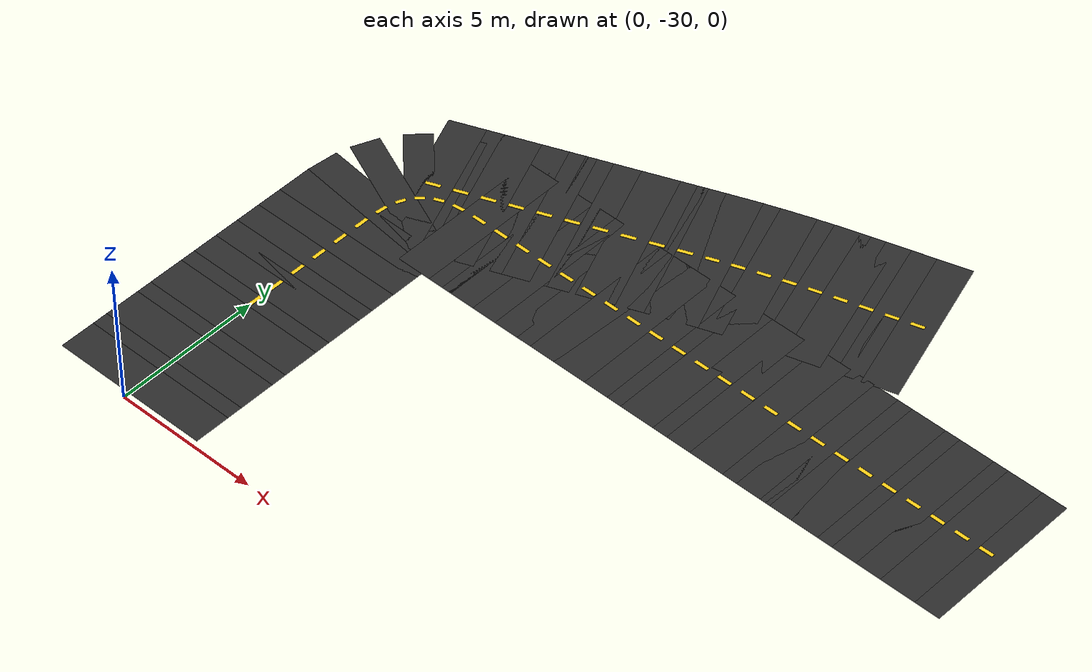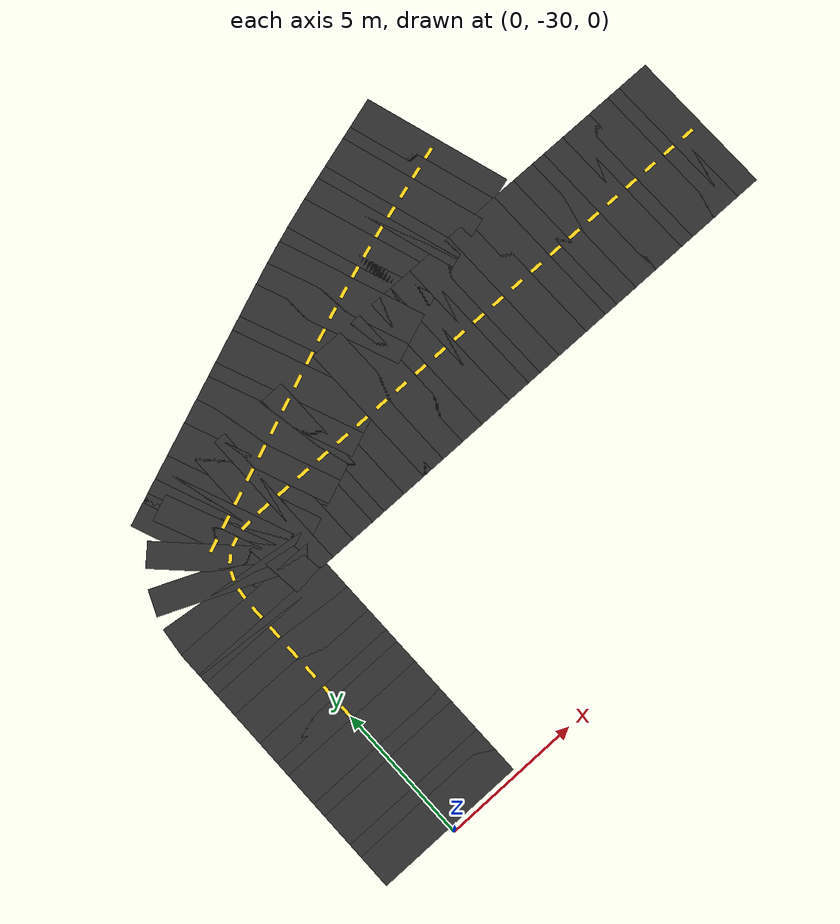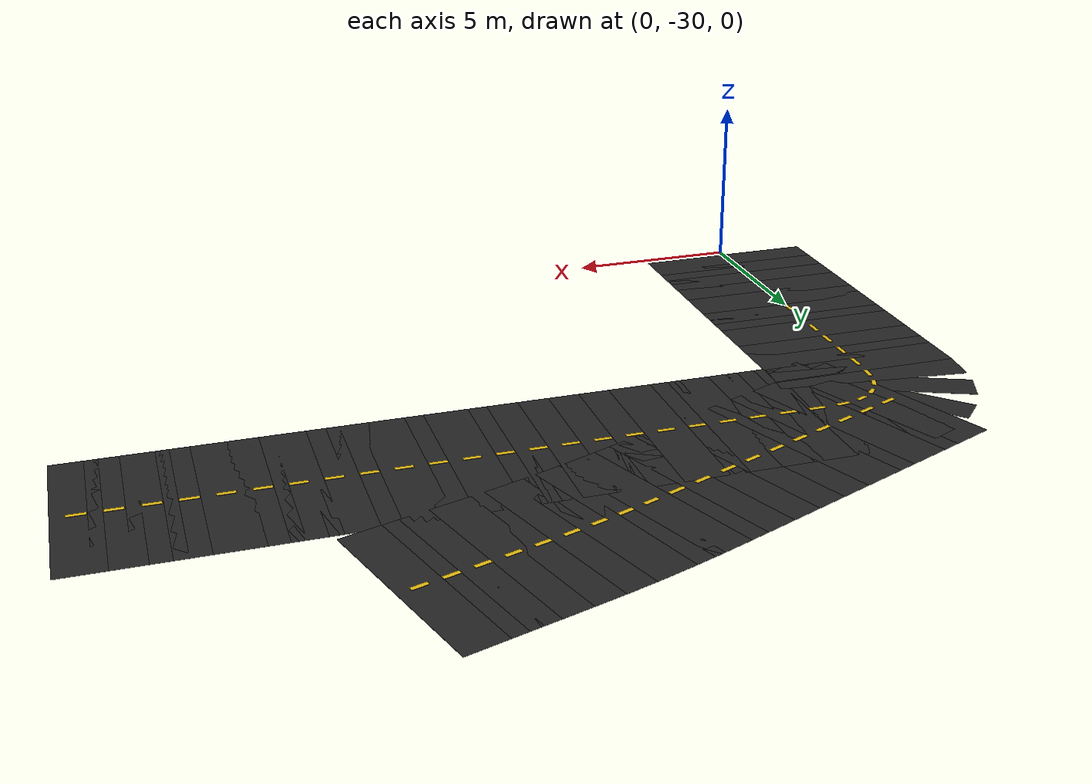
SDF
<sdf version="1.7">
 <world name="campus_delivery">
  <model name="campus_roads">
   <static>true</static>
   <link name="south_service_loop_0013">
    <pose>0.000 -29.188 0.002 0 0 1.570796</pose>
    <visual name="visual">
     <geometry><box><size>1.225 5.500 0.004</size></box></geometry>
     <material><ambient>0.160 0.160 0.160 1.000</ambient><diffuse>0.160 0.160 0.160 1.000</diffuse></material>
    </visual>
    <visual name="center_line">
     <pose>0 0 0.008 0 0 0</pose>
     <geometry><box><size>0.481 0.120 0.012</size></box></geometry>
     <material><ambient>0.950 0.780 0.080 1.000</ambient><diffuse>0.950 0.780 0.080 1.000</diffuse></material>
    </visual>
   </link>
   <link name="south_service_loop_0014">
    <pose>0.000 -28.312 0.002 0 0 1.570796</pose>
    <visual name="visual">
     <geometry><box><size>1.225 5.500 0.004</size></box></geometry>
     <material><ambient>0.160 0.160 0.160 1.000</ambient><diffuse>0.160 0.160 0.160 1.000</diffuse></material>
    </visual>
    <visual name="center_line">
     <pose>0 0 0.008 0 0 0</pose>
     <geometry><box><size>0.481 0.120 0.012</size></box></geometry>
     <material><ambient>0.950 0.780 0.080 1.000</ambient><diffuse>0.950 0.780 0.080 1.000</diffuse></material>
    </visual>
   </link>
   <link name="south_service_loop_0015">
    <pose>0.000 -27.438 0.002 0 0 1.570796</pose>
    <visual name="visual">
     <geometry><box><size>1.225 5.500 0.004</size></box></geometry>
     <material><ambient>0.160 0.160 0.160 1.000</ambient><diffuse>0.160 0.160 0.160 1.000</diffuse></material>
    </visual>
    <visual name="center_line">
     <pose>0 0 0.008 0 0 0</pose>
     <geometry><box><size>0.481 0.120 0.012</size></box></geometry>
     <material><ambient>0.950 0.780 0.080 1.000</ambient><diffuse>0.950 0.780 0.080 1.000</diffuse></material>
    </visual>
   </link>
   <link name="south_service_loop_0016">
    <pose>0.000 -26.562 0.002 0 0 1.570796</pose>
    <visual name="visual">
     <geometry><box><size>1.225 5.500 0.004</size></box></geometry>
     <material><ambient>0.160 0.160 0.160 1.000</ambient><diffuse>0.160 0.160 0.160 1.000</diffuse></material>
    </visual>
    <visual name="center_line">
     <pose>0 0 0.008 0 0 0</pose>
     <geometry><box><size>0.481 0.120 0.012</size></box></geometry>
     <material><ambient>0.950 0.780 0.080 1.000</ambient><diffuse>0.950 0.780 0.080 1.000</diffuse></material>
    </visual>
   </link>
   <link name="south_service_loop_0017">
    <pose>0.000 -25.688 0.002 0 0 1.570796</pose>
    <visual name="visual">
     <geometry><box><size>1.225 5.500 0.004</size></box></geometry>
     <material><ambient>0.160 0.160 0.160 1.000</ambient><diffuse>0.160 0.160 0.160 1.000</diffuse></material>
    </visual>
    <visual name="center_line">
     <pose>0 0 0.008 0 0 0</pose>
     <geometry><box><size>0.481 0.120 0.012</size></box></geometry>
     <material><ambient>0.950 0.780 0.080 1.000</ambient><diffuse>0.950 0.780 0.080 1.000</diffuse></material>
    </visual>
   </link>
   <link name="south_service_loop_0018">
    <pose>0.000 -24.812 0.002 0 0 1.570796</pose>
    <visual name="visual">
     <geometry><box><size>1.225 5.500 0.004</size></box></geometry>
     <material><ambient>0.160 0.160 0.160 1.000</ambient><diffuse>0.160 0.160 0.160 1.000</diffuse></material>
    </visual>
    <visual name="center_line">
     <pose>0 0 0.008 0 0 0</pose>
     <geometry><box><size>0.481 0.120 0.012</size></box></geometry>
     <material><ambient>0.950 0.780 0.080 1.000</ambient><diffuse>0.950 0.780 0.080 1.000</diffuse></material>
    </visual>
   </link>
   <link name="south_service_loop_0019">
    <pose>0.000 -23.938 0.002 0 0 1.570796</pose>
    <visual name="visual">
     <geometry><box><size>1.225 5.500 0.004</size></box></geometry>
     <material><ambient>0.160 0.160 0.160 1.000</ambient><diffuse>0.160 0.160 0.160 1.000</diffuse></material>
    </visual>
    <visual name="center_line">
     <pose>0 0 0.008 0 0 0</pose>
     <geometry><box><size>0.481 0.120 0.012</size></box></geometry>
     <material><ambient>0.950 0.780 0.080 1.000</ambient><diffuse>0.950 0.780 0.080 1.000</diffuse></material>
    </visual>
   </link>
   <link name="south_service_loop_0020">
    <pose>0.000 -23.062 0.002 0 0 1.570796</pose>
    <visual name="visual">
     <geometry><box><size>1.225 5.500 0.004</size></box></geometry>
     <material><ambient>0.160 0.160 0.160 1.000</ambient><diffuse>0.160 0.160 0.160 1.000</diffuse></material>
    </visual>
    <visual name="center_line">
     <pose>0 0 0.008 0 0 0</pose>
     <geometry><box><size>0.481 0.120 0.012</size></box></geometry>
     <material><ambient>0.950 0.780 0.080 1.000</ambient><diffuse>0.950 0.780 0.080 1.000</diffuse></material>
    </visual>
   </link>
   <link name="south_service_loop_0021">
    <pose>0.000 -22.188 0.002 0 0 1.570796</pose>
    <visual name="visual">
     <geometry><box><size>1.225 5.500 0.004</size></box></geometry>
     <material><ambient>0.160 0.160 0.160 1.000</ambient><diffuse>0.160 0.160 0.160 1.000</diffuse></material>
    </visual>
    <visual name="center_line">
     <pose>0 0 0.008 0 0 0</pose>
     <geometry><box><size>0.481 0.120 0.012</size></box></geometry>
     <material><ambient>0.950 0.780 0.080 1.000</ambient><diffuse>0.950 0.780 0.080 1.000</diffuse></material>
    </visual>
   </link>
   <link name="south_service_loop_0022">
    <pose>0.000 -21.312 0.002 0 0 1.570796</pose>
    <visual name="visual">
     <geometry><box><size>1.225 5.500 0.004</size></box></geometry>
     <material><ambient>0.160 0.160 0.160 1.000</ambient><diffuse>0.160 0.160 0.160 1.000</diffuse></material>
    </visual>
    <visual name="center_line">
     <pose>0 0 0.008 0 0 0</pose>
     <geometry><box><size>0.481 0.120 0.012</size></box></geometry>
     <material><ambient>0.950 0.780 0.080 1.000</ambient><diffuse>0.950 0.780 0.080 1.000</diffuse></material>
    </visual>
   </link>
   <link name="south_service_loop_0023">
    <pose>0.000 -20.438 0.002 0 0 1.570796</pose>
    <visual name="visual">
     <geometry><box><size>1.225 5.500 0.004</size></box></geometry>
     <material><ambient>0.160 0.160 0.160 1.000</ambient><diffuse>0.160 0.160 0.160 1.000</diffuse></material>
    </visual>
    <visual name="center_line">
     <pose>0 0 0.008 0 0 0</pose>
     <geometry><box><size>0.481 0.120 0.012</size></box></geometry>
     <material><ambient>0.950 0.780 0.080 1.000</ambient><diffuse>0.950 0.780 0.080 1.000</diffuse></material>
    </visual>
   </link>
   <link name="south_service_loop_0024">
    <pose>0.040 -19.640 0.002 0 0 1.460139</pose>
    <visual name="visual">
     <geometry><box><size>1.074 5.500 0.004</size></box></geometry>
     <material><ambient>0.160 0.160 0.160 1.000</ambient><diffuse>0.160 0.160 0.160 1.000</diffuse></material>
    </visual>
    <visual name="center_line">
     <pose>0 0 0.008 0 0 0</pose>
     <geometry><box><size>0.398 0.120 0.012</size></box></geometry>
     <material><ambient>0.950 0.780 0.080 1.000</ambient><diffuse>0.950 0.780 0.080 1.000</diffuse></material>
    </visual>
   </link>
   <link name="south_service_loop_0025">
    <pose>0.200 -19.000 0.002 0 0 1.165905</pose>
    <visual name="visual">
     <geometry><box><size>0.959 5.500 0.004</size></box></geometry>
     <material><ambient>0.160 0.160 0.160 1.000</ambient><diffuse>0.160 0.160 0.160 1.000</diffuse></material>
    </visual>
    <visual name="center_line">
     <pose>0 0 0.008 0 0 0</pose>
     <geometry><box><size>0.335 0.120 0.012</size></box></geometry>
     <material><ambient>0.950 0.780 0.080 1.000</ambient><diffuse>0.950 0.780 0.080 1.000</diffuse></material>
    </visual>
   </link>
   <link name="south_service_loop_0026">
    <pose>0.520 -18.520 0.002 0 0 0.785398</pose>
    <visual name="visual">
     <geometry><box><size>0.916 5.500 0.004</size></box></geometry>
     <material><ambient>0.160 0.160 0.160 1.000</ambient><diffuse>0.160 0.160 0.160 1.000</diffuse></material>
    </visual>
    <visual name="center_line">
     <pose>0 0 0.008 0 0 0</pose>
     <geometry><box><size>0.311 0.120 0.012</size></box></geometry>
     <material><ambient>0.950 0.780 0.080 1.000</ambient><diffuse>0.950 0.780 0.080 1.000</diffuse></material>
    </visual>
   </link>
   <link name="south_service_loop_0027">
    <pose>1.000 -18.200 0.002 0 0 0.404892</pose>
    <visual name="visual">
     <geometry><box><size>0.959 5.500 0.004</size></box></geometry>
     <material><ambient>0.160 0.160 0.160 1.000</ambient><diffuse>0.160 0.160 0.160 1.000</diffuse></material>
    </visual>
    <visual name="center_line">
     <pose>0 0 0.008 0 0 0</pose>
     <geometry><box><size>0.335 0.120 0.012</size></box></geometry>
     <material><ambient>0.950 0.780 0.080 1.000</ambient><diffuse>0.950 0.780 0.080 1.000</diffuse></material>
    </visual>
   </link>
   <link name="south_service_loop_0028">
    <pose>1.640 -18.040 0.002 0 0 0.110657</pose>
    <visual name="visual">
     <geometry><box><size>1.074 5.500 0.004</size></box></geometry>
     <material><ambient>0.160 0.160 0.160 1.000</ambient><diffuse>0.160 0.160 0.160 1.000</diffuse></material>
    </visual>
    <visual name="center_line">
     <pose>0 0 0.008 0 0 0</pose>
     <geometry><box><size>0.398 0.120 0.012</size></box></geometry>
     <material><ambient>0.950 0.780 0.080 1.000</ambient><diffuse>0.950 0.780 0.080 1.000</diffuse></material>
    </visual>
   </link>
   <link name="south_service_loop_0029">
    <pose>2.435 -18.000 0.002 0 0 0.000000</pose>
    <visual name="visual">
     <geometry><box><size>1.220 5.500 0.004</size></box></geometry>
     <material><ambient>0.160 0.160 0.160 1.000</ambient><diffuse>0.160 0.160 0.160 1.000</diffuse></material>
    </visual>
    <visual name="center_line">
     <pose>0 0 0.008 0 0 0</pose>
     <geometry><box><size>0.478 0.120 0.012</size></box></geometry>
     <material><ambient>0.950 0.780 0.080 1.000</ambient><diffuse>0.950 0.780 0.080 1.000</diffuse></material>
    </visual>
   </link>
   <link name="south_service_loop_0030">
    <pose>3.304 -18.000 0.002 0 0 0.000000</pose>
    <visual name="visual">
     <geometry><box><size>1.220 5.500 0.004</size></box></geometry>
     <material><ambient>0.160 0.160 0.160 1.000</ambient><diffuse>0.160 0.160 0.160 1.000</diffuse></material>
    </visual>
    <visual name="center_line">
     <pose>0 0 0.008 0 0 0</pose>
     <geometry><box><size>0.478 0.120 0.012</size></box></geometry>
     <material><ambient>0.950 0.780 0.080 1.000</ambient><diffuse>0.950 0.780 0.080 1.000</diffuse></material>
    </visual>
   </link>
   <link name="south_service_loop_0031">
    <pose>4.174 -18.000 0.002 0 0 0.000000</pose>
    <visual name="visual">
     <geometry><box><size>1.220 5.500 0.004</size></box></geometry>
     <material><ambient>0.160 0.160 0.160 1.000</ambient><diffuse>0.160 0.160 0.160 1.000</diffuse></material>
    </visual>
    <visual name="center_line">
     <pose>0 0 0.008 0 0 0</pose>
     <geometry><box><size>0.478 0.120 0.012</size></box></geometry>
     <material><ambient>0.950 0.780 0.080 1.000</ambient><diffuse>0.950 0.780 0.080 1.000</diffuse></material>
    </visual>
   </link>
   <link name="south_service_loop_0032">
    <pose>5.043 -18.000 0.002 0 0 0.000000</pose>
    <visual name="visual">
     <geometry><box><size>1.220 5.500 0.004</size></box></geometry>
     <material><ambient>0.160 0.160 0.160 1.000</ambient><diffuse>0.160 0.160 0.160 1.000</diffuse></material>
    </visual>
    <visual name="center_line">
     <pose>0 0 0.008 0 0 0</pose>
     <geometry><box><size>0.478 0.120 0.012</size></box></geometry>
     <material><ambient>0.950 0.780 0.080 1.000</ambient><diffuse>0.950 0.780 0.080 1.000</diffuse></material>
    </visual>
   </link>
   <link name="south_service_loop_0033">
    <pose>5.913 -18.000 0.002 0 0 0.000000</pose>
    <visual name="visual">
     <geometry><box><size>1.220 5.500 0.004</size></box></geometry>
     <material><ambient>0.160 0.160 0.160 1.000</ambient><diffuse>0.160 0.160 0.160 1.000</diffuse></material>
    </visual>
    <visual name="center_line">
     <pose>0 0 0.008 0 0 0</pose>
     <geometry><box><size>0.478 0.120 0.012</size></box></geometry>
     <material><ambient>0.950 0.780 0.080 1.000</ambient><diffuse>0.950 0.780 0.080 1.000</diffuse></material>
    </visual>
   </link>
   <link name="south_service_loop_0034">
    <pose>6.783 -18.000 0.002 0 0 0.000000</pose>
    <visual name="visual">
     <geometry><box><size>1.220 5.500 0.004</size></box></geometry>
     <material><ambient>0.160 0.160 0.160 1.000</ambient><diffuse>0.160 0.160 0.160 1.000</diffuse></material>
    </visual>
    <visual name="center_line">
     <pose>0 0 0.008 0 0 0</pose>
     <geometry><box><size>0.478 0.120 0.012</size></box></geometry>
     <material><ambient>0.950 0.780 0.080 1.000</ambient><diffuse>0.950 0.780 0.080 1.000</diffuse></material>
    </visual>
   </link>
   <link name="south_service_loop_0035">
    <pose>7.652 -18.000 0.002 0 0 0.000000</pose>
    <visual name="visual">
     <geometry><box><size>1.220 5.500 0.004</size></box></geometry>
     <material><ambient>0.160 0.160 0.160 1.000</ambient><diffuse>0.160 0.160 0.160 1.000</diffuse></material>
    </visual>
    <visual name="center_line">
     <pose>0 0 0.008 0 0 0</pose>
     <geometry><box><size>0.478 0.120 0.012</size></box></geometry>
     <material><ambient>0.950 0.780 0.080 1.000</ambient><diffuse>0.950 0.780 0.080 1.000</diffuse></material>
    </visual>
   </link>
   <link name="south_service_loop_0036">
    <pose>8.522 -18.000 0.002 0 0 0.000000</pose>
    <visual name="visual">
     <geometry><box><size>1.220 5.500 0.004</size></box></geometry>
     <material><ambient>0.160 0.160 0.160 1.000</ambient><diffuse>0.160 0.160 0.160 1.000</diffuse></material>
    </visual>
    <visual name="center_line">
     <pose>0 0 0.008 0 0 0</pose>
     <geometry><box><size>0.478 0.120 0.012</size></box></geometry>
     <material><ambient>0.950 0.780 0.080 1.000</ambient><diffuse>0.950 0.780 0.080 1.000</diffuse></material>
    </visual>
   </link>
   <link name="south_service_loop_0037">
    <pose>9.391 -18.000 0.002 0 0 0.000000</pose>
    <visual name="visual">
     <geometry><box><size>1.220 5.500 0.004</size></box></geometry>
     <material><ambient>0.160 0.160 0.160 1.000</ambient><diffuse>0.160 0.160 0.160 1.000</diffuse></material>
    </visual>
    <visual name="center_line">
     <pose>0 0 0.008 0 0 0</pose>
     <geometry><box><size>0.478 0.120 0.012</size></box></geometry>
     <material><ambient>0.950 0.780 0.080 1.000</ambient><diffuse>0.950 0.780 0.080 1.000</diffuse></material>
    </visual>
   </link>
   <link name="south_service_loop_0038">
    <pose>10.261 -18.000 0.002 0 0 0.000000</pose>
    <visual name="visual">
     <geometry><box><size>1.220 5.500 0.004</size></box></geometry>
     <material><ambient>0.160 0.160 0.160 1.000</ambient><diffuse>0.160 0.160 0.160 1.000</diffuse></material>
    </visual>
    <visual name="center_line">
     <pose>0 0 0.008 0 0 0</pose>
     <geometry><box><size>0.478 0.120 0.012</size></box></geometry>
     <material><ambient>0.950 0.780 0.080 1.000</ambient><diffuse>0.950 0.780 0.080 1.000</diffuse></material>
    </visual>
   </link>
   <link name="south_service_loop_0039">
    <pose>11.130 -18.000 0.002 0 0 0.000000</pose>
    <visual name="visual">
     <geometry><box><size>1.220 5.500 0.004</size></box></geometry>
     <material><ambient>0.160 0.160 0.160 1.000</ambient><diffuse>0.160 0.160 0.160 1.000</diffuse></material>
    </visual>
    <visual name="center_line">
     <pose>0 0 0.008 0 0 0</pose>
     <geometry><box><size>0.478 0.120 0.012</size></box></geometry>
     <material><ambient>0.950 0.780 0.080 1.000</ambient><diffuse>0.950 0.780 0.080 1.000</diffuse></material>
    </visual>
   </link>
   <link name="south_service_loop_0040">
    <pose>12.000 -18.000 0.002 0 0 0.000000</pose>
    <visual name="visual">
     <geometry><box><size>1.220 5.500 0.004</size></box></geometry>
     <material><ambient>0.160 0.160 0.160 1.000</ambient><diffuse>0.160 0.160 0.160 1.000</diffuse></material>
    </visual>
    <visual name="center_line">
     <pose>0 0 0.008 0 0 0</pose>
     <geometry><box><size>0.478 0.120 0.012</size></box></geometry>
     <material><ambient>0.950 0.780 0.080 1.000</ambient><diffuse>0.950 0.780 0.080 1.000</diffuse></material>
    </visual>
   </link>
   <link name="south_service_loop_0041">
    <pose>12.870 -18.000 0.002 0 0 0.000000</pose>
    <visual name="visual">
     <geometry><box><size>1.220 5.500 0.004</size></box></geometry>
     <material><ambient>0.160 0.160 0.160 1.000</ambient><diffuse>0.160 0.160 0.160 1.000</diffuse></material>
    </visual>
    <visual name="center_line">
     <pose>0 0 0.008 0 0 0</pose>
     <geometry><box><size>0.478 0.120 0.012</size></box></geometry>
     <material><ambient>0.950 0.780 0.080 1.000</ambient><diffuse>0.950 0.780 0.080 1.000</diffuse></material>
    </visual>
   </link>
   <link name="south_service_loop_0042">
    <pose>13.739 -18.000 0.002 0 0 0.000000</pose>
    <visual name="visual">
     <geometry><box><size>1.220 5.500 0.004</size></box></geometry>
     <material><ambient>0.160 0.160 0.160 1.000</ambient><diffuse>0.160 0.160 0.160 1.000</diffuse></material>
    </visual>
    <visual name="center_line">
     <pose>0 0 0.008 0 0 0</pose>
     <geometry><box><size>0.478 0.120 0.012</size></box></geometry>
     <material><ambient>0.950 0.780 0.080 1.000</ambient><diffuse>0.950 0.780 0.080 1.000</diffuse></material>
    </visual>
   </link>
   <link name="south_service_loop_0043">
    <pose>14.609 -18.000 0.002 0 0 0.000000</pose>
    <visual name="visual">
     <geometry><box><size>1.220 5.500 0.004</size></box></geometry>
     <material><ambient>0.160 0.160 0.160 1.000</ambient><diffuse>0.160 0.160 0.160 1.000</diffuse></material>
    </visual>
    <visual name="center_line">
     <pose>0 0 0.008 0 0 0</pose>
     <geometry><box><size>0.478 0.120 0.012</size></box></geometry>
     <material><ambient>0.950 0.780 0.080 1.000</ambient><diffuse>0.950 0.780 0.080 1.000</diffuse></material>
    </visual>
   </link>
   <link name="south_service_loop_0044">
    <pose>15.478 -18.000 0.002 0 0 0.000000</pose>
    <visual name="visual">
     <geometry><box><size>1.220 5.500 0.004</size></box></geometry>
     <material><ambient>0.160 0.160 0.160 1.000</ambient><diffuse>0.160 0.160 0.160 1.000</diffuse></material>
    </visual>
    <visual name="center_line">
     <pose>0 0 0.008 0 0 0</pose>
     <geometry><box><size>0.478 0.120 0.012</size></box></geometry>
     <material><ambient>0.950 0.780 0.080 1.000</ambient><diffuse>0.950 0.780 0.080 1.000</diffuse></material>
    </visual>
   </link>
   <link name="south_service_loop_0045">
    <pose>16.348 -18.000 0.002 0 0 0.000000</pose>
    <visual name="visual">
     <geometry><box><size>1.220 5.500 0.004</size></box></geometry>
     <material><ambient>0.160 0.160 0.160 1.000</ambient><diffuse>0.160 0.160 0.160 1.000</diffuse></material>
    </visual>
    <visual name="center_line">
     <pose>0 0 0.008 0 0 0</pose>
     <geometry><box><size>0.478 0.120 0.012</size></box></geometry>
     <material><ambient>0.950 0.780 0.080 1.000</ambient><diffuse>0.950 0.780 0.080 1.000</diffuse></material>
    </visual>
   </link>
   <link name="south_service_loop_0046">
    <pose>17.217 -18.000 0.002 0 0 0.000000</pose>
    <visual name="visual">
     <geometry><box><size>1.220 5.500 0.004</size></box></geometry>
     <material><ambient>0.160 0.160 0.160 1.000</ambient><diffuse>0.160 0.160 0.160 1.000</diffuse></material>
    </visual>
    <visual name="center_line">
     <pose>0 0 0.008 0 0 0</pose>
     <geometry><box><size>0.478 0.120 0.012</size></box></geometry>
     <material><ambient>0.950 0.780 0.080 1.000</ambient><diffuse>0.950 0.780 0.080 1.000</diffuse></material>
    </visual>
   </link>
   <link name="south_service_loop_0047">
    <pose>18.087 -18.000 0.002 0 0 0.000000</pose>
    <visual name="visual">
     <geometry><box><size>1.220 5.500 0.004</size></box></geometry>
     <material><ambient>0.160 0.160 0.160 1.000</ambient><diffuse>0.160 0.160 0.160 1.000</diffuse></material>
    </visual>
    <visual name="center_line">
     <pose>0 0 0.008 0 0 0</pose>
     <geometry><box><size>0.478 0.120 0.012</size></box></geometry>
     <material><ambient>0.950 0.780 0.080 1.000</ambient><diffuse>0.950 0.780 0.080 1.000</diffuse></material>
    </visual>
   </link>
   <link name="south_service_loop_0048">
    <pose>18.957 -18.000 0.002 0 0 0.000000</pose>
    <visual name="visual">
     <geometry><box><size>1.220 5.500 0.004</size></box></geometry>
     <material><ambient>0.160 0.160 0.160 1.000</ambient><diffuse>0.160 0.160 0.160 1.000</diffuse></material>
    </visual>
    <visual name="center_line">
     <pose>0 0 0.008 0 0 0</pose>
     <geometry><box><size>0.478 0.120 0.012</size></box></geometry>
     <material><ambient>0.950 0.780 0.080 1.000</ambient><diffuse>0.950 0.780 0.080 1.000</diffuse></material>
    </visual>
   </link>
   <link name="south_service_loop_0049">
    <pose>19.826 -18.000 0.002 0 0 0.000000</pose>
    <visual name="visual">
     <geometry><box><size>1.220 5.500 0.004</size></box></geometry>
     <material><ambient>0.160 0.160 0.160 1.000</ambient><diffuse>0.160 0.160 0.160 1.000</diffuse></material>
    </visual>
    <visual name="center_line">
     <pose>0 0 0.008 0 0 0</pose>
     <geometry><box><size>0.478 0.120 0.012</size></box></geometry>
     <material><ambient>0.950 0.780 0.080 1.000</ambient><diffuse>0.950 0.780 0.080 1.000</diffuse></material>
    </visual>
   </link>
   <link name="south_service_loop_0050">
    <pose>20.696 -18.000 0.002 0 0 0.000000</pose>
    <visual name="visual">
     <geometry><box><size>1.220 5.500 0.004</size></box></geometry>
     <material><ambient>0.160 0.160 0.160 1.000</ambient><diffuse>0.160 0.160 0.160 1.000</diffuse></material>
    </visual>
    <visual name="center_line">
     <pose>0 0 0.008 0 0 0</pose>
     <geometry><box><size>0.478 0.120 0.012</size></box></geometry>
     <material><ambient>0.950 0.780 0.080 1.000</ambient><diffuse>0.950 0.780 0.080 1.000</diffuse></material>
    </visual>
   </link>
   <link name="south_service_loop_0051">
    <pose>21.565 -18.000 0.002 0 0 0.000000</pose>
    <visual name="visual">
     <geometry><box><size>1.220 5.500 0.004</size></box></geometry>
     <material><ambient>0.160 0.160 0.160 1.000</ambient><diffuse>0.160 0.160 0.160 1.000</diffuse></material>
    </visual>
    <visual name="center_line">
     <pose>0 0 0.008 0 0 0</pose>
     <geometry><box><size>0.478 0.120 0.012</size></box></geometry>
     <material><ambient>0.950 0.780 0.080 1.000</ambient><diffuse>0.950 0.780 0.080 1.000</diffuse></material>
    </visual>
   </link>
   <link name="campus_main_trunk_0000">
    <pose>0.407 -17.837 0.002 0 0 0.380506</pose>
    <visual name="visual">
     <geometry><box><size>1.227 5.500 0.004</size></box></geometry>
     <material><ambient>0.160 0.160 0.160 1.000</ambient><diffuse>0.160 0.160 0.160 1.000</diffuse></material>
    </visual>
    <visual name="center_line">
     <pose>0 0 0.008 0 0 0</pose>
     <geometry><box><size>0.482 0.120 0.012</size></box></geometry>
     <material><ambient>0.950 0.780 0.080 1.000</ambient><diffuse>0.950 0.780 0.080 1.000</diffuse></material>
    </visual>
   </link>
   <link name="campus_main_trunk_0001">
    <pose>1.221 -17.511 0.002 0 0 0.380506</pose>
    <visual name="visual">
     <geometry><box><size>1.227 5.500 0.004</size></box></geometry>
     <material><ambient>0.160 0.160 0.160 1.000</ambient><diffuse>0.160 0.160 0.160 1.000</diffuse></material>
    </visual>
    <visual name="center_line">
     <pose>0 0 0.008 0 0 0</pose>
     <geometry><box><size>0.482 0.120 0.012</size></box></geometry>
     <material><ambient>0.950 0.780 0.080 1.000</ambient><diffuse>0.950 0.780 0.080 1.000</diffuse></material>
    </visual>
   </link>
   <link name="campus_main_trunk_0002">
    <pose>2.036 -17.186 0.002 0 0 0.380506</pose>
    <visual name="visual">
     <geometry><box><size>1.227 5.500 0.004</size></box></geometry>
     <material><ambient>0.160 0.160 0.160 1.000</ambient><diffuse>0.160 0.160 0.160 1.000</diffuse></material>
    </visual>
    <visual name="center_line">
     <pose>0 0 0.008 0 0 0</pose>
     <geometry><box><size>0.482 0.120 0.012</size></box></geometry>
     <material><ambient>0.950 0.780 0.080 1.000</ambient><diffuse>0.950 0.780 0.080 1.000</diffuse></material>
    </visual>
   </link>
   <link name="campus_main_trunk_0003">
    <pose>2.850 -16.860 0.002 0 0 0.380506</pose>
    <visual name="visual">
     <geometry><box><size>1.227 5.500 0.004</size></box></geometry>
     <material><ambient>0.160 0.160 0.160 1.000</ambient><diffuse>0.160 0.160 0.160 1.000</diffuse></material>
    </visual>
    <visual name="center_line">
     <pose>0 0 0.008 0 0 0</pose>
     <geometry><box><size>0.482 0.120 0.012</size></box></geometry>
     <material><ambient>0.950 0.780 0.080 1.000</ambient><diffuse>0.950 0.780 0.080 1.000</diffuse></material>
    </visual>
   </link>
   <link name="campus_main_trunk_0004">
    <pose>3.664 -16.534 0.002 0 0 0.380506</pose>
    <visual name="visual">
     <geometry><box><size>1.227 5.500 0.004</size></box></geometry>
     <material><ambient>0.160 0.160 0.160 1.000</ambient><diffuse>0.160 0.160 0.160 1.000</diffuse></material>
    </visual>
    <visual name="center_line">
     <pose>0 0 0.008 0 0 0</pose>
     <geometry><box><size>0.482 0.120 0.012</size></box></geometry>
     <material><ambient>0.950 0.780 0.080 1.000</ambient><diffuse>0.950 0.780 0.080 1.000</diffuse></material>
    </visual>
   </link>
   <link name="campus_main_trunk_0005">
    <pose>4.479 -16.209 0.002 0 0 0.380506</pose>
    <visual name="visual">
     <geometry><box><size>1.227 5.500 0.004</size></box></geometry>
     <material><ambient>0.160 0.160 0.160 1.000</ambient><diffuse>0.160 0.160 0.160 1.000</diffuse></material>
    </visual>
    <visual name="center_line">
     <pose>0 0 0.008 0 0 0</pose>
     <geometry><box><size>0.482 0.120 0.012</size></box></geometry>
     <material><ambient>0.950 0.780 0.080 1.000</ambient><diffuse>0.950 0.780 0.080 1.000</diffuse></material>
    </visual>
   </link>
   <link name="campus_main_trunk_0006">
    <pose>5.293 -15.883 0.002 0 0 0.380506</pose>
    <visual name="visual">
     <geometry><box><size>1.227 5.500 0.004</size></box></geometry>
     <material><ambient>0.160 0.160 0.160 1.000</ambient><diffuse>0.160 0.160 0.160 1.000</diffuse></material>
    </visual>
    <visual name="center_line">
     <pose>0 0 0.008 0 0 0</pose>
     <geometry><box><size>0.482 0.120 0.012</size></box></geometry>
     <material><ambient>0.950 0.780 0.080 1.000</ambient><diffuse>0.950 0.780 0.080 1.000</diffuse></material>
    </visual>
   </link>
   <link name="campus_main_trunk_0007">
    <pose>6.107 -15.557 0.002 0 0 0.380506</pose>
    <visual name="visual">
     <geometry><box><size>1.227 5.500 0.004</size></box></geometry>
     <material><ambient>0.160 0.160 0.160 1.000</ambient><diffuse>0.160 0.160 0.160 1.000</diffuse></material>
    </visual>
    <visual name="center_line">
     <pose>0 0 0.008 0 0 0</pose>
     <geometry><box><size>0.482 0.120 0.012</size></box></geometry>
     <material><ambient>0.950 0.780 0.080 1.000</ambient><diffuse>0.950 0.780 0.080 1.000</diffuse></material>
    </visual>
   </link>
   <link name="campus_main_trunk_0008">
    <pose>6.922 -15.231 0.002 0 0 0.380506</pose>
    <visual name="visual">
     <geometry><box><size>1.227 5.500 0.004</size></box></geometry>
     <material><ambient>0.160 0.160 0.160 1.000</ambient><diffuse>0.160 0.160 0.160 1.000</diffuse></material>
    </visual>
    <visual name="center_line">
     <pose>0 0 0.008 0 0 0</pose>
     <geometry><box><size>0.482 0.120 0.012</size></box></geometry>
     <material><ambient>0.950 0.780 0.080 1.000</ambient><diffuse>0.950 0.780 0.080 1.000</diffuse></material>
    </visual>
   </link>
   <link name="campus_main_trunk_0009">
    <pose>7.736 -14.906 0.002 0 0 0.380506</pose>
    <visual name="visual">
     <geometry><box><size>1.227 5.500 0.004</size></box></geometry>
     <material><ambient>0.160 0.160 0.160 1.000</ambient><diffuse>0.160 0.160 0.160 1.000</diffuse></material>
    </visual>
    <visual name="center_line">
     <pose>0 0 0.008 0 0 0</pose>
     <geometry><box><size>0.482 0.120 0.012</size></box></geometry>
     <material><ambient>0.950 0.780 0.080 1.000</ambient><diffuse>0.950 0.780 0.080 1.000</diffuse></material>
    </visual>
   </link>
   <link name="campus_main_trunk_0010">
    <pose>8.516 -14.598 0.002 0 0 0.371610</pose>
    <visual name="visual">
     <geometry><box><size>1.150 5.500 0.004</size></box></geometry>
     <material><ambient>0.160 0.160 0.160 1.000</ambient><diffuse>0.160 0.160 0.160 1.000</diffuse></material>
    </visual>
    <visual name="center_line">
     <pose>0 0 0.008 0 0 0</pose>
     <geometry><box><size>0.440 0.120 0.012</size></box></geometry>
     <material><ambient>0.950 0.780 0.080 1.000</ambient><diffuse>0.950 0.780 0.080 1.000</diffuse></material>
    </visual>
   </link>
   <link name="campus_main_trunk_0011">
    <pose>9.263 -14.314 0.002 0 0 0.353801</pose>
    <visual name="visual">
     <geometry><box><size>1.149 5.500 0.004</size></box></geometry>
     <material><ambient>0.160 0.160 0.160 1.000</ambient><diffuse>0.160 0.160 0.160 1.000</diffuse></material>
    </visual>
    <visual name="center_line">
     <pose>0 0 0.008 0 0 0</pose>
     <geometry><box><size>0.440 0.120 0.012</size></box></geometry>
     <material><ambient>0.950 0.780 0.080 1.000</ambient><diffuse>0.950 0.780 0.080 1.000</diffuse></material>
    </visual>
   </link>
   <link name="campus_main_trunk_0012">
    <pose>10.015 -14.044 0.002 0 0 0.335982</pose>
    <visual name="visual">
     <geometry><box><size>1.149 5.500 0.004</size></box></geometry>
     <material><ambient>0.160 0.160 0.160 1.000</ambient><diffuse>0.160 0.160 0.160 1.000</diffuse></material>
    </visual>
    <visual name="center_line">
     <pose>0 0 0.008 0 0 0</pose>
     <geometry><box><size>0.440 0.120 0.012</size></box></geometry>
     <material><ambient>0.950 0.780 0.080 1.000</ambient><diffuse>0.950 0.780 0.080 1.000</diffuse></material>
    </visual>
   </link>
   <link name="campus_main_trunk_0013">
    <pose>10.772 -13.787 0.002 0 0 0.318162</pose>
    <visual name="visual">
     <geometry><box><size>1.149 5.500 0.004</size></box></geometry>
     <material><ambient>0.160 0.160 0.160 1.000</ambient><diffuse>0.160 0.160 0.160 1.000</diffuse></material>
    </visual>
    <visual name="center_line">
     <pose>0 0 0.008 0 0 0</pose>
     <geometry><box><size>0.440 0.120 0.012</size></box></geometry>
     <material><ambient>0.950 0.780 0.080 1.000</ambient><diffuse>0.950 0.780 0.080 1.000</diffuse></material>
    </visual>
   </link>
   <link name="campus_main_trunk_0014">
    <pose>11.534 -13.544 0.002 0 0 0.300353</pose>
    <visual name="visual">
     <geometry><box><size>1.150 5.500 0.004</size></box></geometry>
     <material><ambient>0.160 0.160 0.160 1.000</ambient><diffuse>0.160 0.160 0.160 1.000</diffuse></material>
    </visual>
    <visual name="center_line">
     <pose>0 0 0.008 0 0 0</pose>
     <geometry><box><size>0.440 0.120 0.012</size></box></geometry>
     <material><ambient>0.950 0.780 0.080 1.000</ambient><diffuse>0.950 0.780 0.080 1.000</diffuse></material>
    </visual>
   </link>
   <link name="campus_main_trunk_0015">
    <pose>12.301 -13.310 0.002 0 0 0.291457</pose>
    <visual name="visual">
     <geometry><box><size>1.155 5.500 0.004</size></box></geometry>
     <material><ambient>0.160 0.160 0.160 1.000</ambient><diffuse>0.160 0.160 0.160 1.000</diffuse></material>
    </visual>
    <visual name="center_line">
     <pose>0 0 0.008 0 0 0</pose>
     <geometry><box><size>0.443 0.120 0.012</size></box></geometry>
     <material><ambient>0.950 0.780 0.080 1.000</ambient><diffuse>0.950 0.780 0.080 1.000</diffuse></material>
    </visual>
   </link>
   <link name="campus_main_trunk_0016">
    <pose>13.072 -13.078 0.002 0 0 0.291457</pose>
    <visual name="visual">
     <geometry><box><size>1.155 5.500 0.004</size></box></geometry>
     <material><ambient>0.160 0.160 0.160 1.000</ambient><diffuse>0.160 0.160 0.160 1.000</diffuse></material>
    </visual>
    <visual name="center_line">
     <pose>0 0 0.008 0 0 0</pose>
     <geometry><box><size>0.443 0.120 0.012</size></box></geometry>
     <material><ambient>0.950 0.780 0.080 1.000</ambient><diffuse>0.950 0.780 0.080 1.000</diffuse></material>
    </visual>
   </link>
   <link name="campus_main_trunk_0017">
    <pose>13.843 -12.847 0.002 0 0 0.291457</pose>
    <visual name="visual">
     <geometry><box><size>1.155 5.500 0.004</size></box></geometry>
     <material><ambient>0.160 0.160 0.160 1.000</ambient><diffuse>0.160 0.160 0.160 1.000</diffuse></material>
    </visual>
    <visual name="center_line">
     <pose>0 0 0.008 0 0 0</pose>
     <geometry><box><size>0.443 0.120 0.012</size></box></geometry>
     <material><ambient>0.950 0.780 0.080 1.000</ambient><diffuse>0.950 0.780 0.080 1.000</diffuse></material>
    </visual>
   </link>
   <link name="campus_main_trunk_0018">
    <pose>14.614 -12.616 0.002 0 0 0.291457</pose>
    <visual name="visual">
     <geometry><box><size>1.155 5.500 0.004</size></box></geometry>
     <material><ambient>0.160 0.160 0.160 1.000</ambient><diffuse>0.160 0.160 0.160 1.000</diffuse></material>
    </visual>
    <visual name="center_line">
     <pose>0 0 0.008 0 0 0</pose>
     <geometry><box><size>0.443 0.120 0.012</size></box></geometry>
     <material><ambient>0.950 0.780 0.080 1.000</ambient><diffuse>0.950 0.780 0.080 1.000</diffuse></material>
    </visual>
   </link>
  </model>
 </world>
</sdf>
